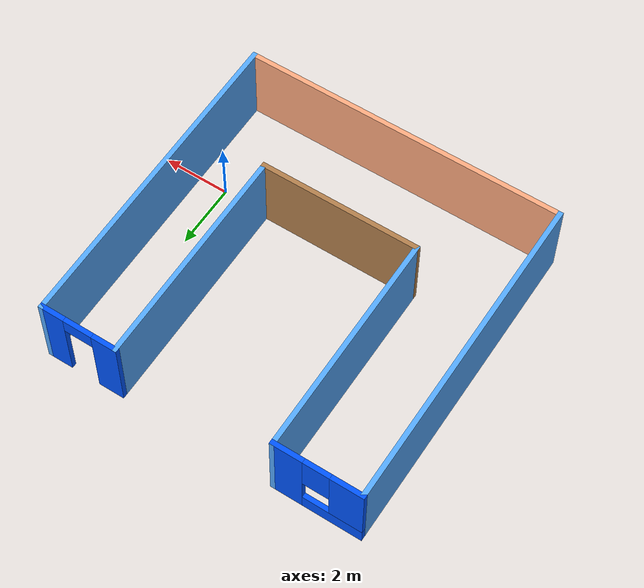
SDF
<?xml version='1.0'?>
<sdf version='1.6'>
  <model name='building_U'>
    <pose frame=''>-3.989 1.96153 0 0 -0 0</pose>
    <link name='Wall_32'>
      <collision name='Wall_32_Collision'>
        <geometry>
          <box>
            <size>10 0.15 2.5</size>
          </box>
        </geometry>
        <pose frame=''>0 0 1.25 0 -0 0</pose>
      </collision>
      <visual name='Wall_32_Visual'>
        <pose frame=''>0 0 1.25 0 -0 0</pose>
        <geometry>
          <box>
            <size>10 0.15 2.5</size>
          </box>
        </geometry>
        <material>
          <script>
            <uri>file://media/materials/scripts/gazebo.material</uri>
            <name>Gazebo/Grey</name>
          </script>
          <ambient>0.333333 0.666667 1 1</ambient>
        </material>
      </visual>
      <pose frame=''>-4.925 0 0 0 0 -1.5708</pose>
    </link>
    <link name='Wall_33'>
      <collision name='Wall_33_Collision'>
        <geometry>
          <box>
            <size>10 0.15 2.5</size>
          </box>
        </geometry>
        <pose frame=''>0 0 1.25 0 -0 0</pose>
      </collision>
      <visual name='Wall_33_Visual'>
        <pose frame=''>0 0 1.25 0 -0 0</pose>
        <geometry>
          <box>
            <size>10 0.15 2.5</size>
          </box>
        </geometry>
        <material>
          <script>
            <uri>file://media/materials/scripts/gazebo.material</uri>
            <name>Gazebo/Grey</name>
          </script>
          <ambient>1 0.666667 0.498039 1</ambient>
        </material>
      </visual>
      <pose frame=''>0 -4.925 0 0 -0 0</pose>
    </link>
    <link name='Wall_34'>
      <collision name='Wall_34_Collision'>
        <geometry>
          <box>
            <size>10 0.15 2.5</size>
          </box>
        </geometry>
        <pose frame=''>0 0 1.25 0 -0 0</pose>
      </collision>
      <visual name='Wall_34_Visual'>
        <pose frame=''>0 0 1.25 0 -0 0</pose>
        <geometry>
          <box>
            <size>10 0.15 2.5</size>
          </box>
        </geometry>
        <material>
          <script>
            <uri>file://media/materials/scripts/gazebo.material</uri>
            <name>Gazebo/Grey</name>
          </script>
          <ambient>0.333333 0.666667 1 1</ambient>
        </material>
      </visual>
      <pose frame=''>4.925 0 0 0 -0 1.5708</pose>
    </link>
    <link name='Wall_35'>
      <pose frame=''>3.75 4.925 0 0 -0 3.14159</pose>
      <visual name='Wall_35_Visual_0'>
        <pose frame=''>-0.84962 0 1.25 0 -0 0</pose>
        <geometry>
          <box>
            <size>0.80076 0.15 2.5</size>
          </box>
        </geometry>
        <material>
          <script>
            <uri>file://media/materials/scripts/gazebo.material</uri>
            <name>Gazebo/Grey</name>
          </script>
          <ambient>0 0.333333 1 1</ambient>
        </material>
      </visual>
      <collision name='Wall_35_Collision_0'>
        <geometry>
          <box>
            <size>0.80076 0.15 2.5</size>
          </box>
        </geometry>
        <pose frame=''>-0.84962 0 1.25 0 -0 0</pose>
      </collision>
      <visual name='Wall_35_Visual_1'>
        <pose frame=''>0.85038 0 1.25 0 -0 0</pose>
        <geometry>
          <box>
            <size>0.79924 0.15 2.5</size>
          </box>
        </geometry>
        <material>
          <script>
            <uri>file://media/materials/scripts/gazebo.material</uri>
            <name>Gazebo/Grey</name>
          </script>
          <ambient>0 0.333333 1 1</ambient>
        </material>
      </visual>
      <collision name='Wall_35_Collision_1'>
        <geometry>
          <box>
            <size>0.79924 0.15 2.5</size>
          </box>
        </geometry>
        <pose frame=''>0.85038 0 1.25 0 -0 0</pose>
      </collision>
      <visual name='Wall_35_Visual_2'>
        <pose frame=''>0.00076 0 2.25 0 -0 0</pose>
        <geometry>
          <box>
            <size>0.9 0.15 0.5</size>
          </box>
        </geometry>
        <material>
          <script>
            <uri>file://media/materials/scripts/gazebo.material</uri>
            <name>Gazebo/Grey</name>
          </script>
          <ambient>0 0.333333 1 1</ambient>
        </material>
      </visual>
      <collision name='Wall_35_Collision_2'>
        <geometry>
          <box>
            <size>0.9 0.15 0.5</size>
          </box>
        </geometry>
        <pose frame=''>0.00076 0 2.25 0 -0 0</pose>
      </collision>
    </link>
    <link name='Wall_36'>
      <collision name='Wall_36_Collision'>
        <geometry>
          <box>
            <size>7 0.15 2.5</size>
          </box>
        </geometry>
        <pose frame=''>0 0 1.25 0 -0 0</pose>
      </collision>
      <visual name='Wall_36_Visual'>
        <pose frame=''>0 0 1.25 0 -0 0</pose>
        <geometry>
          <box>
            <size>7 0.15 2.5</size>
          </box>
        </geometry>
        <material>
          <script>
            <uri>file://media/materials/scripts/gazebo.material</uri>
            <name>Gazebo/Grey</name>
          </script>
          <ambient>0.333333 0.666667 1 1</ambient>
        </material>
      </visual>
      <pose frame=''>2.575 1.5 0 0 0 -1.5708</pose>
    </link>
    <link name='Wall_37'>
      <collision name='Wall_37_Collision'>
        <geometry>
          <box>
            <size>5 0.15 2.5</size>
          </box>
        </geometry>
        <pose frame=''>0 0 1.25 0 -0 0</pose>
      </collision>
      <visual name='Wall_37_Visual'>
        <pose frame=''>0 0 1.25 0 -0 0</pose>
        <geometry>
          <box>
            <size>5 0.15 2.5</size>
          </box>
        </geometry>
        <material>
          <script>
            <uri>file://media/materials/scripts/gazebo.material</uri>
            <name>Gazebo/Wood</name>
          </script>
          <ambient>1 1 1 1</ambient>
        </material>
      </visual>
      <pose frame=''>0.15 -1.925 0 0 -0 3.14159</pose>
    </link>
    <link name='Wall_38'>
      <collision name='Wall_38_Collision'>
        <geometry>
          <box>
            <size>7 0.15 2.5</size>
          </box>
        </geometry>
        <pose frame=''>0 0 1.25 0 -0 0</pose>
      </collision>
      <visual name='Wall_38_Visual'>
        <pose frame=''>0 0 1.25 0 -0 0</pose>
        <geometry>
          <box>
            <size>7 0.15 2.5</size>
          </box>
        </geometry>
        <material>
          <script>
            <uri>file://media/materials/scripts/gazebo.material</uri>
            <name>Gazebo/Grey</name>
          </script>
          <ambient>0.333333 0.666667 1 1</ambient>
        </material>
      </visual>
      <pose frame=''>-2.275 1.5 0 0 -0 1.5708</pose>
    </link>
    <link name='Wall_39'>
      <pose frame=''>-3.6 4.925 0 0 -0 3.14159</pose>
      <visual name='Wall_39_Visual_0'>
        <pose frame=''>-0.906687 0 1.25 0 -0 0</pose>
        <geometry>
          <box>
            <size>0.986626 0.15 2.5</size>
          </box>
        </geometry>
        <material>
          <script>
            <uri>file://media/materials/scripts/gazebo.material</uri>
            <name>Gazebo/Grey</name>
          </script>
          <ambient>0 0.333333 1 1</ambient>
        </material>
      </visual>
      <collision name='Wall_39_Collision_0'>
        <geometry>
          <box>
            <size>0.986626 0.15 2.5</size>
          </box>
        </geometry>
        <pose frame=''>-0.906687 0 1.25 0 -0 0</pose>
      </collision>
      <visual name='Wall_39_Visual_1'>
        <pose frame=''>0.493313 0 0.25 0 -0 0</pose>
        <geometry>
          <box>
            <size>1.81337 0.15 0.5</size>
          </box>
        </geometry>
        <material>
          <script>
            <uri>file://media/materials/scripts/gazebo.material</uri>
            <name>Gazebo/Grey</name>
          </script>
          <ambient>0 0.333333 1 1</ambient>
        </material>
      </visual>
      <collision name='Wall_39_Collision_1'>
        <geometry>
          <box>
            <size>1.81337 0.15 0.5</size>
          </box>
        </geometry>
        <pose frame=''>0.493313 0 0.25 0 -0 0</pose>
      </collision>
      <visual name='Wall_39_Visual_2'>
        <pose frame=''>0.893313 0 1.5 0 -0 0</pose>
        <geometry>
          <box>
            <size>1.01337 0.15 2</size>
          </box>
        </geometry>
        <material>
          <script>
            <uri>file://media/materials/scripts/gazebo.material</uri>
            <name>Gazebo/Grey</name>
          </script>
          <ambient>0 0.333333 1 1</ambient>
        </material>
      </visual>
      <collision name='Wall_39_Collision_2'>
        <geometry>
          <box>
            <size>1.01337 0.15 2</size>
          </box>
        </geometry>
        <pose frame=''>0.893313 0 1.5 0 -0 0</pose>
      </collision>
      <visual name='Wall_39_Visual_3'>
        <pose frame=''>-0.013374 0 1.9 0 -0 0</pose>
        <geometry>
          <box>
            <size>0.8 0.15 1.2</size>
          </box>
        </geometry>
        <material>
          <script>
            <uri>file://media/materials/scripts/gazebo.material</uri>
            <name>Gazebo/Grey</name>
          </script>
          <ambient>0 0.333333 1 1</ambient>
        </material>
      </visual>
      <collision name='Wall_39_Collision_3'>
        <geometry>
          <box>
            <size>0.8 0.15 1.2</size>
          </box>
        </geometry>
        <pose frame=''>-0.013374 0 1.9 0 -0 0</pose>
      </collision>
    </link>
    <static>1</static>
  </model>
</sdf>
